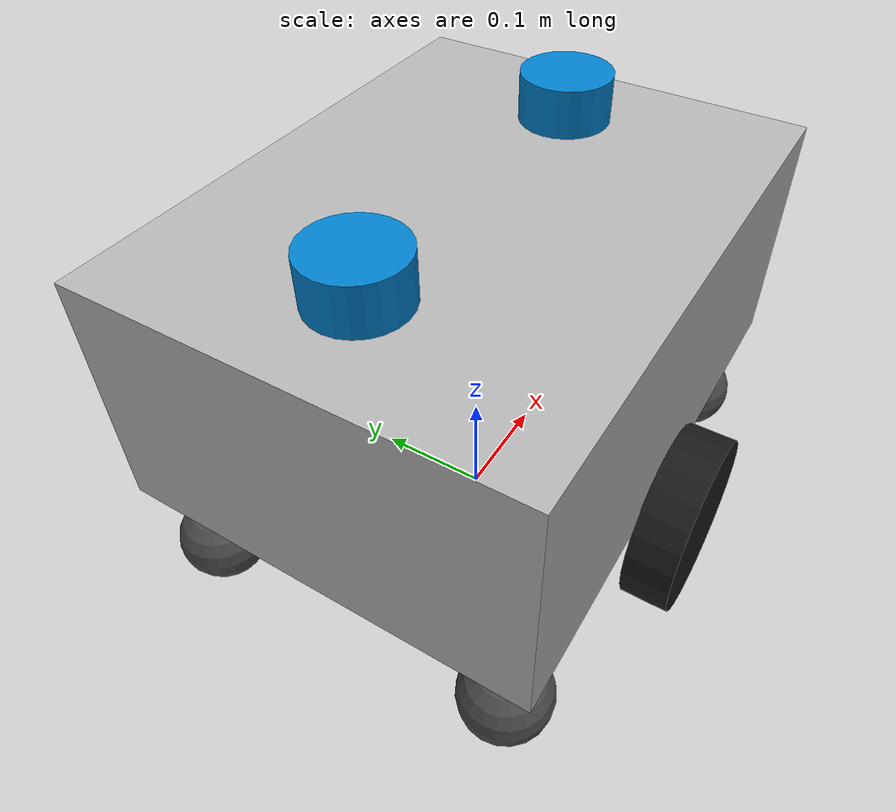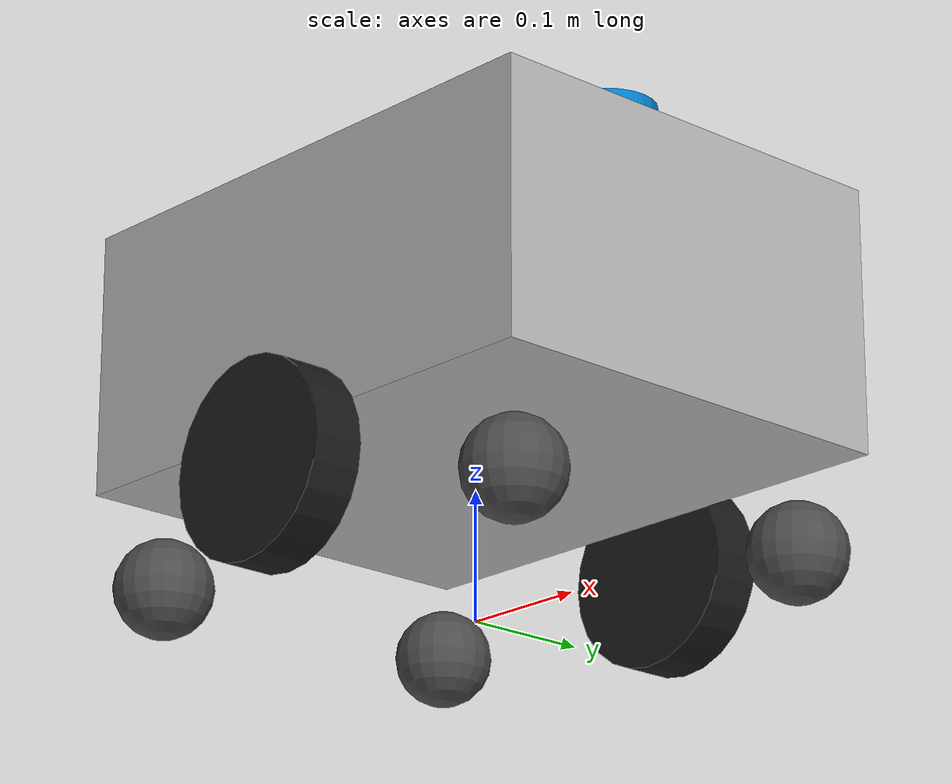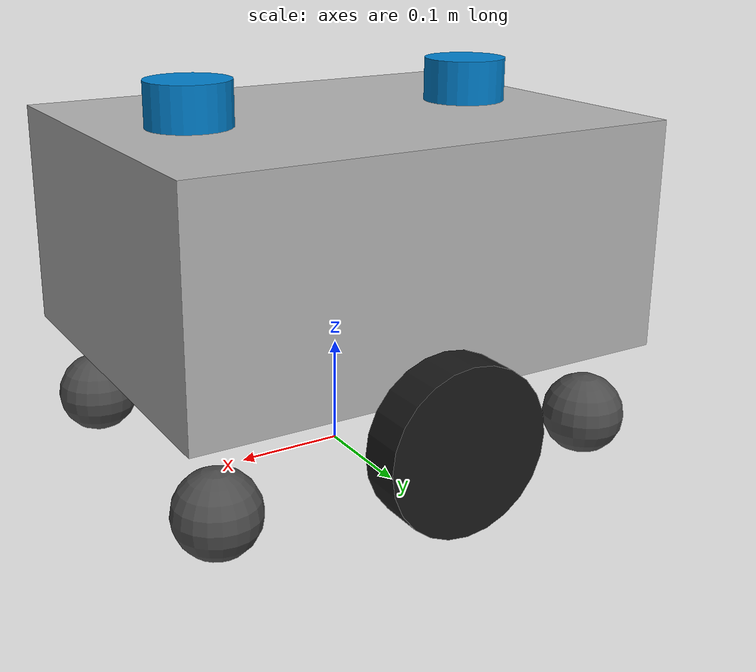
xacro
<?xml version="1.0"?>
<robot name="cubic_c1" xmlns:xacro="http://www.ros.org/wiki/xacro">

  <material name="body_color"><color rgba="0.7 0.7 0.7 1.0"/></material>
  <material name="wheel_color"><color rgba="0.1 0.1 0.1 1.0"/></material>
  <material name="caster_color"><color rgba="0.3 0.3 0.3 1.0"/></material>
  <material name="sensor_color"><color rgba="0.0 0.5 0.8 1.0"/></material>

  <link name="base_footprint"/>

  <joint name="base_footprint_joint" type="fixed">
    <parent link="base_footprint"/>
    <child link="base_link"/>
    <origin xyz="0 0 0.0755" rpy="0 0 0"/>
  </joint>

  <link name="base_link">
    <visual>
      <origin xyz="0 0 0.1405" rpy="0 0 0"/>
      <geometry>
        <box size="0.455 0.355 0.208"/>
      </geometry>
      <material name="body_color"/>
    </visual>
    <collision>
      <origin xyz="0 0 0.1405" rpy="0 0 0"/>
      <geometry>
        <box size="0.455 0.355 0.208"/>
      </geometry>
    </collision>
    <inertial>
      <mass value="15.0"/>
      <origin xyz="0 0 0.1405" rpy="0 0 0"/>
      <inertia ixx="0.211" ixy="0.0" ixz="0.0" iyy="0.313" iyz="0.0" izz="0.416"/>
    </inertial>
  </link>

  <xacro:macro name="main_wheel" params="prefix y_reflect">
    <link name="wheel_${prefix}_link">
      <visual>
        <origin xyz="0 0 0" rpy="1.570796 0 0"/>
        <geometry>
          <cylinder length="0.04" radius="0.0755"/>
        </geometry>
        <material name="wheel_color"/>
      </visual>
      <collision>
        <origin xyz="0 0 0" rpy="1.570796 0 0"/>
        <geometry>
          <cylinder length="0.04" radius="0.0755"/>
        </geometry>
      </collision>
      <inertial>
        <mass value="1.0"/>
        <inertia ixx="0.0015" ixy="0" ixz="0" iyy="0.0015" iyz="0" izz="0.0028"/>
      </inertial>
    </link>

    <joint name="wheel_${prefix}_joint" type="continuous">
      <parent link="base_link"/>
      <child link="wheel_${prefix}_link"/>
      <origin xyz="0 ${y_reflect * 0.1975} 0" rpy="0 0 0"/>
      <axis xyz="0 1 0"/>
    </joint>
  </xacro:macro>

  <xacro:main_wheel prefix="left" y_reflect="1"/>
  <xacro:main_wheel prefix="right" y_reflect="-1"/>

  <xacro:macro name="caster_wheel" params="prefix x_reflect y_reflect">
    <link name="caster_${prefix}_link">
      <visual>
        <geometry>
          <sphere radius="0.0381"/>
        </geometry>
        <material name="caster_color"/>
      </visual>
      <collision>
        <geometry>
          <sphere radius="0.0381"/>
        </geometry>
      </collision>
      <inertial>
        <mass value="0.3"/>
        <inertia ixx="0.00017" ixy="0" ixz="0" iyy="0.00017" iyz="0" izz="0.00017"/>
      </inertial>
    </link>

    <joint name="caster_${prefix}_joint" type="fixed">
      <parent link="base_link"/>
      <child link="caster_${prefix}_link"/>
      <origin xyz="${x_reflect * 0.19} ${y_reflect * 0.14} -0.0374" rpy="0 0 0"/>
    </joint>
  </xacro:macro>

  <xacro:caster_wheel prefix="front_left"  x_reflect="1"  y_reflect="1"/>
  <xacro:caster_wheel prefix="front_right" x_reflect="1"  y_reflect="-1"/>
  <xacro:caster_wheel prefix="rear_left"   x_reflect="-1" y_reflect="1"/>
  <xacro:caster_wheel prefix="rear_right"  x_reflect="-1" y_reflect="-1"/>

  <xacro:macro name="rplidar_c1" params="prefix x_offset yaw_angle">
    <link name="lidar_${prefix}_link">
      <visual>
        <origin xyz="0 0 0.02" rpy="0 0 0"/>
        <geometry>
          <cylinder length="0.04" radius="0.038"/>
        </geometry>
        <material name="sensor_color"/>
      </visual>
      <collision>
        <origin xyz="0 0 0.02" rpy="0 0 0"/>
        <geometry>
          <cylinder length="0.04" radius="0.038"/>
        </geometry>
      </collision>
    </link>

    <joint name="lidar_${prefix}_joint" type="fixed">
      <parent link="base_link"/>
      <child link="lidar_${prefix}_link"/>
      <origin xyz="${x_offset} 0 0.2445" rpy="0 0 ${yaw_angle}"/>
    </joint>
  </xacro:macro>

  <xacro:rplidar_c1 prefix="front" x_offset="0.14125"  yaw_angle="3.141592"/>
  <xacro:rplidar_c1 prefix="rear"  x_offset="-0.14125" yaw_angle="0"/>

  <link name="imu_link">
    <visual>
      <geometry>
        <box size="0.02 0.02 0.005"/>
      </geometry>
      <material name="sensor_color"/>
    </visual>
  </link>

  <joint name="imu_joint" type="fixed">
    <parent link="base_link"/>
    <child link="imu_link"/>
    <origin xyz="0.103 0.0025 0.095" rpy="0 0 0"/>
  </joint>

</robot>
